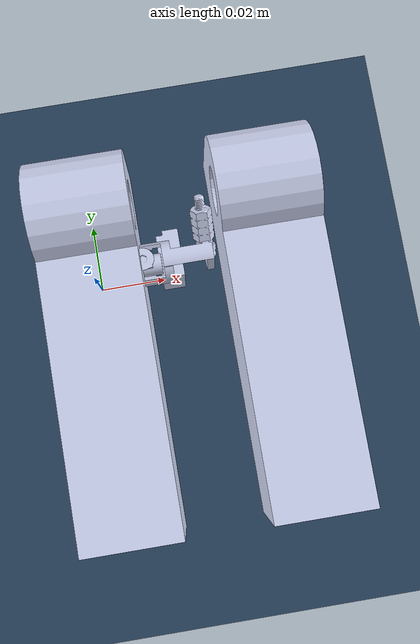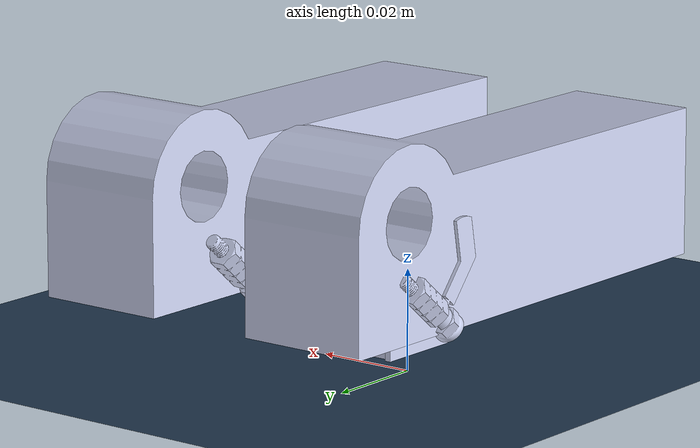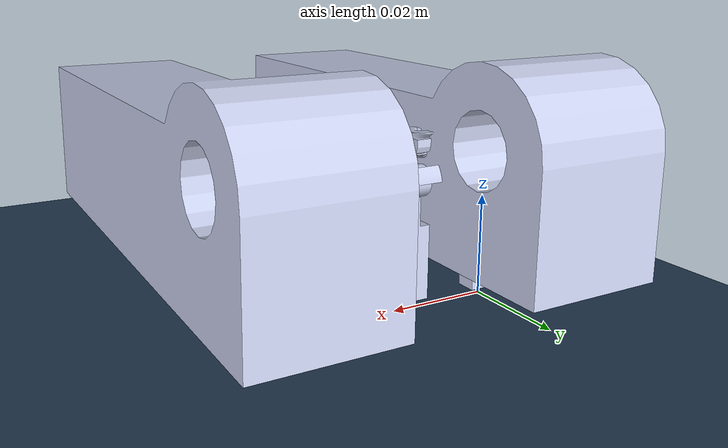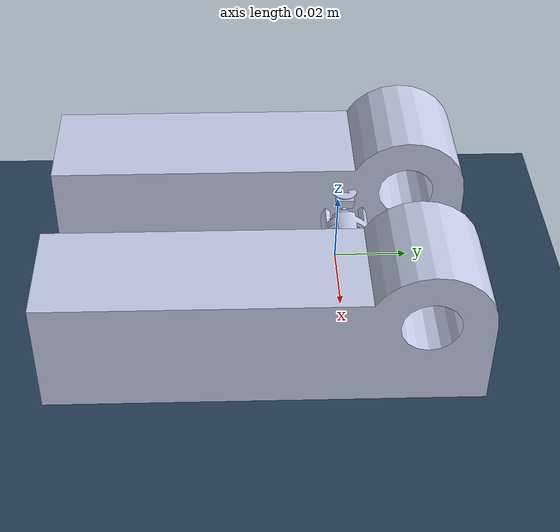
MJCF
<mujoco model="zippy scene">
  <include file="zippy_motor.xml" />

  <statistic center="0 0 0.2" extent="0.6" />

  <visual>
    <headlight diffuse="0.6 0.6 0.6" ambient="0.3 0.3 0.3" specular="0 0 0" />
    <rgba haze="0.15 0.25 0.35 1" />
    <global azimuth="160" elevation="-20" />
  </visual>

  <asset>
    <texture type="skybox" builtin="gradient" rgb1="0.3 0.5 0.7" rgb2="0 0 0" width="512"
      height="3072" />
    <texture type="2d" name="groundplane" builtin="checker" mark="edge" rgb1="0.2 0.3 0.4"
      rgb2="0.1 0.2 0.3"
      markrgb="0.8 0.8 0.8" width="300" height="300" />
    <material name="groundplane" texture="groundplane" texuniform="true" texrepeat="5 5"
      reflectance="0.2" />
  </asset>

  <worldbody>
    <light pos="0 0 1.5" dir="0 0 -1" directional="true" />
    <geom name="floor" size="0 0 0.001" type="plane" material="groundplane" />
  </worldbody>
</mujoco>

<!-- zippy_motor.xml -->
<mujoco model="onshape">
    <compiler angle="radian"/>

    <asset>
        <mesh name="driver" file="driver.stl"/>
        <mesh name="hip_motor" file="hip_motor.stl"/>
        <mesh name="hand_weight" file="hand_weight.stl"/>
        <mesh name="l_arm" file="l_arm.stl"/>
        <mesh name="battery" file="battery.stl"/>
        <mesh name="r_leg" file="r_leg.stl"/>
        <mesh name="r_arm" file="r_arm.stl"/>
        <mesh name="mcu" file="mcu.stl"/>
        <mesh name="l_leg" file="l_leg.stl"/>
        <mesh name="weight" file="weight.stl"/>
    </asset>

    <visual>
        <global offwidth="1920" offheight="1080"/>
    </visual>

    <worldbody>
        <body name="r_leg" pos="0 0 0.02496501">
            <freejoint />
            <geom mass="0.0006" pos="0.0253843 0.0156727 0.00858911" quat="1 0 0 0" type="mesh" rgba="0.796078 0.823529 0.937255 1" mesh="driver"/>
            <geom mass="0.00141" pos="0.0254272 0.015691 0.00858911" quat="1 0 0 0" type="mesh" rgba="0.796078 0.823529 0.937255 1" mesh="hip_motor"/>
            <geom mass="0.00248" pos="-0.003613 0.0169705 0.00694314" quat="0.707067 -0.00745631 0.536852 0.460206" type="mesh" rgba="0.796078 0.823529 0.937255 1" mesh="hand_weight"/>
            <geom mass="0.00058" pos="0.0253272 0.015541 0.00858911" quat="1 0 0 0" type="mesh" rgba="0.796078 0.823529 0.937255 1" mesh="l_arm"/>
            <geom mass="0.02295" pos="0.0254272 0.015791 0.00858911" type="mesh" rgba="0.796078 0.823529 0.937255 1" mesh="battery"/>
            <geom mass="0.00317" pos="0.0254272 0.015691 0.00858911" type="mesh" rgba="0.796078 0.823529 0.937255 1" mesh="r_leg"/>
            <body name="l_leg" pos="0.005875 0 0" quat="0.5 0.5 0.5 0.5">
                <joint name="hip" pos="0 0 0" axis="0 0 1" range="-0.349066 0.349066"/>
                <geom mass="0.00047" pos="0.0157485 0.00866577 0.0205022" quat="0.5 -0.5 -0.5 -0.5" type="mesh" rgba="0.796078 0.823529 0.937255 1" mesh="r_arm"/>
                <geom mass="0.00402" pos="0.015691 0.00858911 -0.009375" quat="0.5 -0.5 -0.5 -0.5" type="mesh" rgba="0.796078 0.823529 0.937255 1" mesh="mcu"/>
                <geom mass="0.0033" pos="0.015691 0.00858911 0.0202022" quat="0.5 -0.5 -0.5 -0.5" type="mesh" rgba="0.796078 0.823529 0.937255 1" mesh="l_leg"/>
                <geom mass="0.021" pos="0.015691 0.00858911 0.0202022" quat="0.5 -0.5 -0.5 -0.5" type="mesh" rgba="0.796078 0.823529 0.937255 1" mesh="weight"/>
                <geom mass="0.00248" pos="0.0168778 0.00737613 0.036162" quat="0.852459 -0.320489 0.145352 -0.386617" type="mesh" rgba="0.796078 0.823529 0.937255 1" mesh="hand_weight"/>
            </body>
        </body>
    </worldbody>

    <contact>
        <exclude body1="r_leg" body2="l_leg" />
    </contact>

    <actuator>
        <motor name="hip_joint_act" joint="hip" forcerange="-0.01059232775 0.01059232775"/>
    </actuator>
</mujoco>
